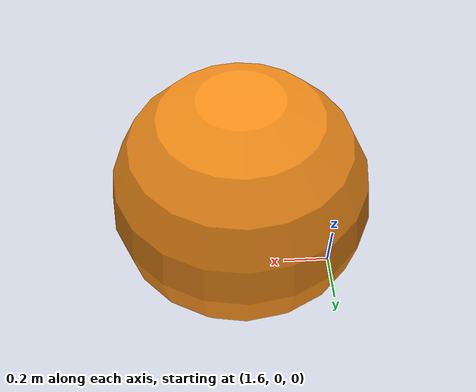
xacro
<?xml version="1.0"?>
<robot name="ball" xmlns:xacro="http://www.ros.org/wiki/xacro">

  <!-- Constants for robot dimensions -->
  <xacro:property name="PI" value="3.1415926535897931"/>
  <xacro:property name="radius" value="0.5" />
  <xacro:property name="mass" value="3" />

  <link name="world"/>

  <!-- Planar joint -->
  <joint name="planx" type="prismatic">
    <parent link="world"/>
    <child link="x-prism"/>
    <origin xyz="2 0 0.5" rpy="0 0 0"/>
    <axis xyz="1 0 0"/>
    <limit effort="1000.0" lower="-10.0" upper="50.0" velocity="10.0"/>
  </joint>
  <link name="x-prism">
    <visual>
      <origin xyz="0 0 0" rpy="0 0 0"/>
      <geometry>
        <box size="${0.0001} ${0.0001} ${0.0001}"/>
      </geometry>
      <material name="orange"/>
    </visual>
    <inertial>
      <origin xyz="0 0 0" rpy="0 0 0"/>
      <mass value="${1}"/>
      <inertia
        ixx="${1 / 12.0 * (0.0001 + 0.0001)}" ixy="0.0" ixz="0.0"
          iyy="${1 / 12.0 * (0.0001 + 0.0001)}" iyz="0.0"
          izz="${1 / 12.0 * (0.0001 + 0.0001)}" />
    </inertial>
  </link>
  <joint name="planz" type="prismatic">
    <parent link="x-prism"/>
    <child link="z-prism"/>
    <axis xyz="0 0 1"/>
    <origin xyz="0 0 0" rpy="0 0 0"/>
    <limit effort="1000.0" lower="-10.0" upper="50.0" velocity="10.0"/>
  </joint>

  <link name="z-prism">
    <visual>
      <origin xyz="0 0 0" rpy="0 0 0"/>
      <geometry>
        <box size="${0.0001} ${0.0001} ${0.0001}"/>
      </geometry>
      <material name="orange"/>
    </visual>

    <inertial>
      <origin xyz="0 0 0" rpy="0 0 0"/>
      <mass value="${1}"/>
      <inertia
        ixx="${1 / 12.0 * (0.0001 + 0.0001)}" ixy="0.0" ixz="0.0"
          iyy="${1 / 12.0 * (0.0001 + 0.0001)}" iyz="0.0"
	  izz="${1 / 12.0 * (0.0001 + 0.0001)}" />
    </inertial>
  </link>
  <joint name="rev" type="continuous">
    <parent link="z-prism"/>
    <child link="ball"/>
    <axis xyz="0 1 0"/>
    <origin xyz="0 0 0" rpy="0 0 0"/>
  </joint>
  <!-- End planar joint -->

  <link name="ball">
    <collision>
      <origin xyz="0 0 0" rpy="0 0 0"/>
      <geometry>
        <sphere radius="${radius}"/>
      </geometry>
    </collision>
    <visual>
      <origin xyz="0 0 0" rpy="0 0 0"/>
      <geometry>
        <sphere radius="${radius}"/>
      </geometry>
      <material name="orange"/>
    </visual>

    <inertial>
      <origin xyz="0 0 0" rpy="0 0 0"/>
      <mass value="${mass}"/>
      <inertia
        ixx="${mass / 5 * 2 * radius * radius}" ixy="0.0" ixz="0.0"
          iyy="${mass / 5 * 2 * radius * radius}" iyz="0.0"
          izz="${mass / 5 * 2 * radius * radius}" />
    </inertial>
  </link>

</robot>
